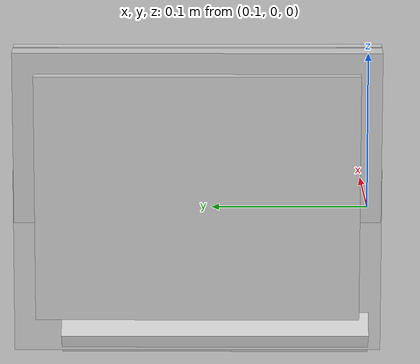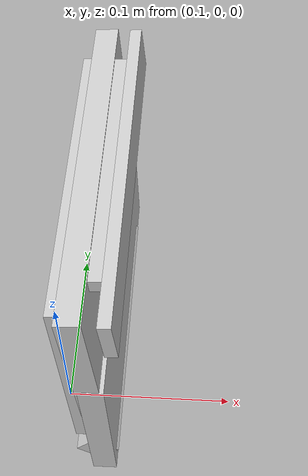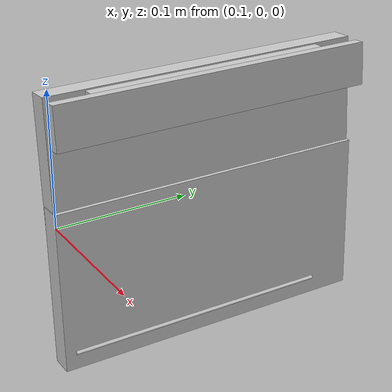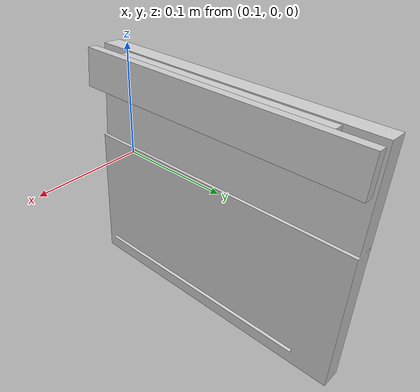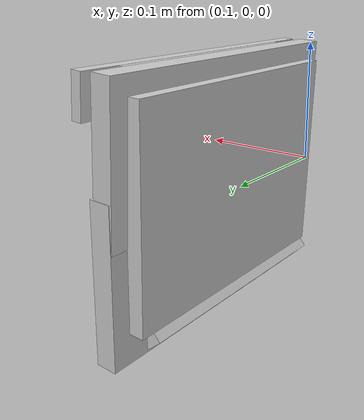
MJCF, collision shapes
<mujoco model="door">
  <asset>
  <texture file="template.png" name="tex-door" type="2d" />
  <material name="door" reflectance="0.5" texrepeat="1 1" texture="tex-door" texuniform="false" />
  <mesh file="visual/door_vis.msh" name="door_vis" scale="0.1 0.1 0.1" /></asset>
  <worldbody>
    <body>
      <body name="object">
      <geom solimp="0.998 0.998 0.001" solref="0.001 1" density="100" friction="0.95 0.3 0.1" type="mesh" mesh="door_vis" conaffinity="0" contype="0" group="1" material="door" /><geom solimp="0.998 0.998 0.001" solref="0.001 1" density="100" friction="0.95 0.3 0.1" type="box" pos="0.10361 0.10960 0.00634" quat="0.70701 0.70701 -0.01193 0.01193" size="0.00935 0.08040 0.10507" group="0" rgba="0.8 0.8 0.8 0.3" /><geom solimp="0.998 0.998 0.001" solref="0.001 1" density="100" friction="0.95 0.3 0.1" type="box" pos="0.11618 0.10960 -0.03715" quat="0.00901 0.00901 0.70705 -0.70705" size="0.00834 0.05988 0.11952" group="0" rgba="0.8 0.8 0.8 0.3" /><geom solimp="0.998 0.998 0.001" solref="0.001 1" density="100" friction="0.95 0.3 0.1" type="box" pos="0.12869 0.10960 0.08568" quat="0.03061 0.03061 0.70644 -0.70644" size="0.00399 0.01560 0.11952" group="0" rgba="0.8 0.8 0.8 0.3" /><geom solimp="0.998 0.998 0.001" solref="0.001 1" density="100" friction="0.95 0.3 0.1" type="box" pos="0.11706 0.10960 0.09560" quat="0.51180 0.51180 0.48791 -0.48791" size="0.00493 0.01413 0.08979" group="0" rgba="0.8 0.8 0.8 0.3" /><geom solimp="0.998 0.998 0.001" solref="0.001 1" density="100" friction="0.95 0.3 0.1" type="box" pos="0.11100 0.10960 0.04481" quat="0.02249 -0.02249 0.70675 0.70675" size="0.00783 0.05623 0.11913" group="0" rgba="0.8 0.8 0.8 0.3" /><geom solimp="0.998 0.998 0.001" solref="0.001 1" density="100" friction="0.95 0.3 0.1" type="box" pos="0.11237 0.09813 -0.08471" quat="0.29616 0.29616 0.64210 -0.64210" size="0.01012 0.01105 0.10000" group="0" rgba="0.8 0.8 0.8 0.3" /></body>
      <site rgba="0 0 0 0" size="0.005" pos="0 0 -0.06" name="bottom_site" />
      <site rgba="0 0 0 0" size="0.005" pos="0 0 0.04" name="top_site" />
      <site rgba="0 0 0 0" size="0.005" pos="0.025 0.025 0" name="horizontal_radius_site" />
    </body>
  </worldbody>
</mujoco>
